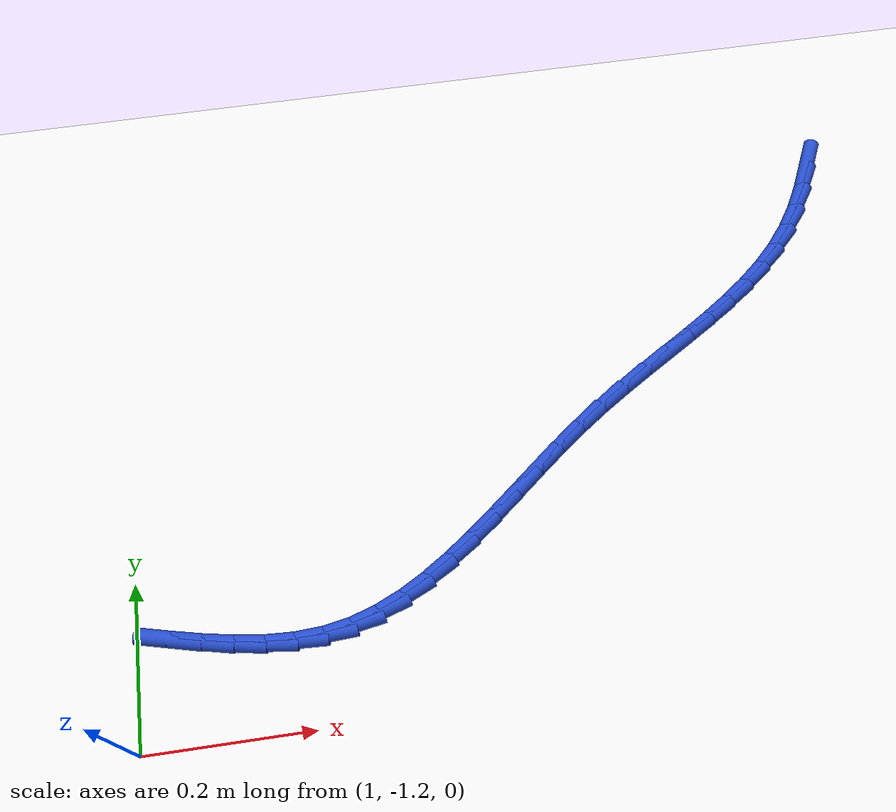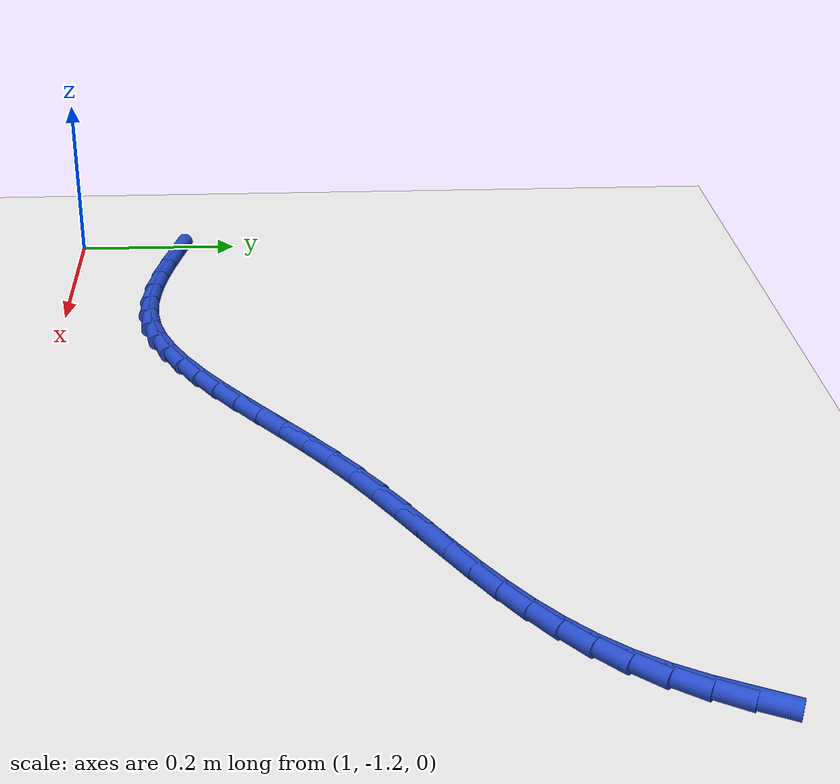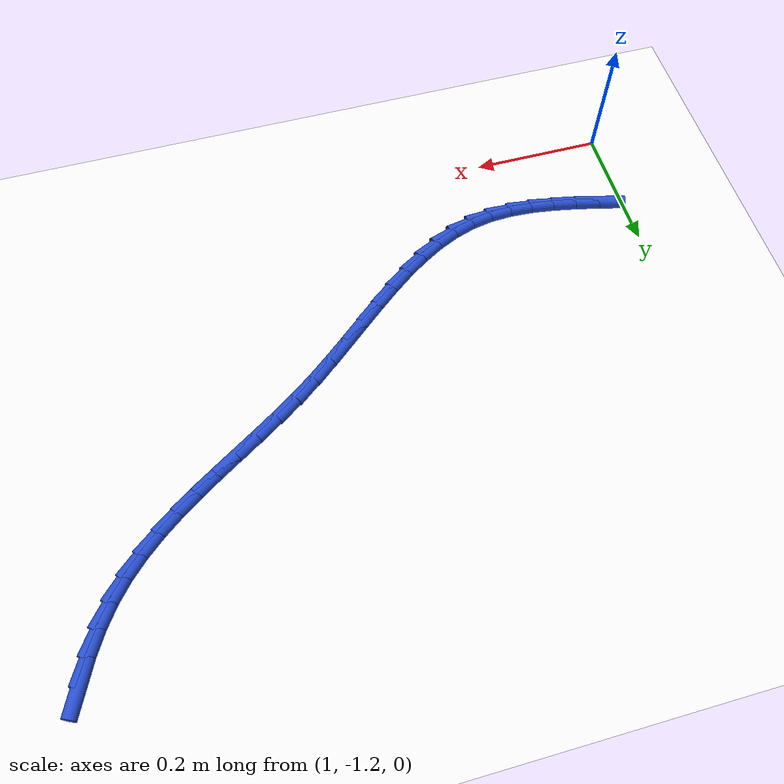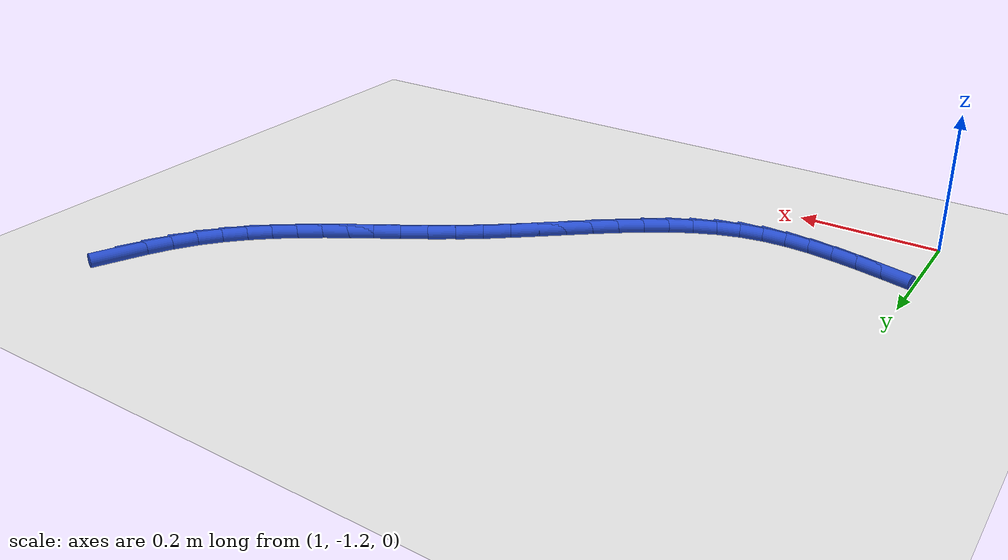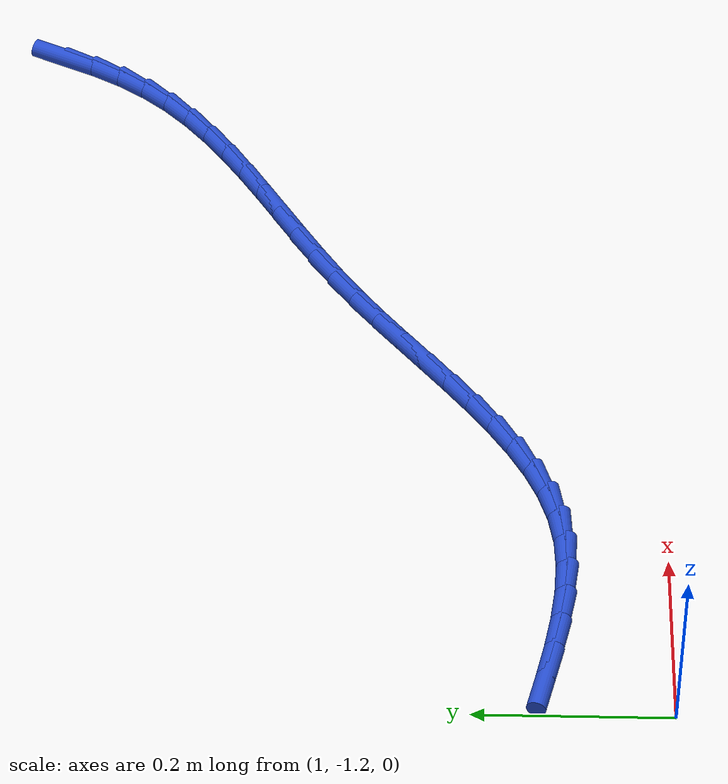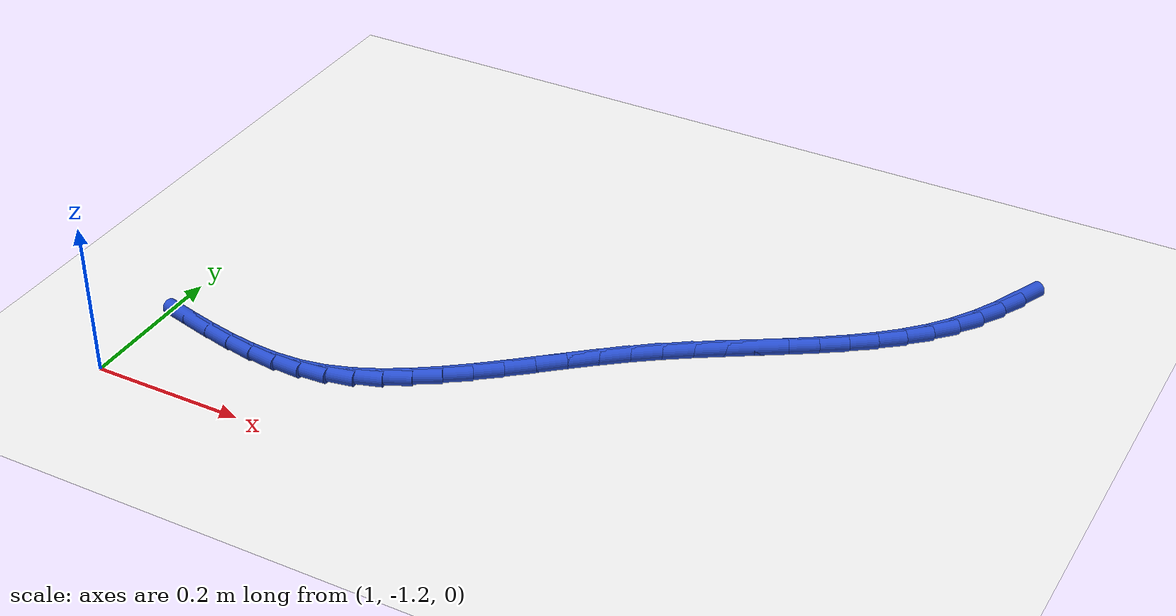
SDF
<sdf version="1.6">
 <world name="default">
  <model name="ground_plane">
   <static>1</static>
   <link name="link">
    <collision name="collision">
     <geometry><plane><normal>0 0 1</normal><size>100 100</size></plane></geometry>
     <surface><friction><ode><mu>100</mu><mu2>50</mu2></ode></friction></surface>
    </collision>
    <visual name="visual">
     <cast_shadows>0</cast_shadows>
     <geometry><plane><normal>0 0 1</normal><size>100 100</size></plane></geometry>
     <material>
      <script><uri>file://media/materials/scripts/gazebo.material</uri><name>Gazebo/WhiteGlow</name></script>
     </material>
    </visual>
   </link>
  </model>
  <model name="line">
   <link name="link_105">
    <pose>1.9261676094999935 -0.5460503893547127 0.01 0 1.57 1.1432242017782954</pose>
    <collision name="collision">
     <geometry><cylinder><radius>0.01</radius><length>0.08</length></cylinder></geometry>
    </collision>
    <visual name="visual">
     <material>
      <script><name>Gazebo/Blue</name><uri>file://media/materials/scripts/gazebo.material</uri></script>
     </material>
     <geometry><cylinder><radius>0.01</radius><length>0.08</length></cylinder></geometry>
    </visual>
   </link>
   <link name="link_106">
    <pose>1.9112290203674698 -0.5788330453610755 0.01 0 1.57 1.0710125754454067</pose>
    <collision name="collision">
     <geometry><cylinder><radius>0.01</radius><length>0.08</length></cylinder></geometry>
    </collision>
    <visual name="visual">
     <material>
      <script><name>Gazebo/Blue</name><uri>file://media/materials/scripts/gazebo.material</uri></script>
     </material>
     <geometry><cylinder><radius>0.01</radius><length>0.08</length></cylinder></geometry>
    </visual>
   </link>
   <link name="link_107">
    <pose>1.8942709921174206 -0.6098904687942246 0.01 0 1.57 0.9840373216354331</pose>
    <collision name="collision">
     <geometry><cylinder><radius>0.01</radius><length>0.08</length></cylinder></geometry>
    </collision>
    <visual name="visual">
     <material>
      <script><name>Gazebo/Blue</name><uri>file://media/materials/scripts/gazebo.material</uri></script>
     </material>
     <geometry><cylinder><radius>0.01</radius><length>0.08</length></cylinder></geometry>
    </visual>
   </link>
   <link name="link_108">
    <pose>1.8749660376786939 -0.6389260710450702 0.01 0 1.57 0.8845829806071636</pose>
    <collision name="collision">
     <geometry><cylinder><radius>0.01</radius><length>0.08</length></cylinder></geometry>
    </collision>
    <visual name="visual">
     <material>
      <script><name>Gazebo/Blue</name><uri>file://media/materials/scripts/gazebo.material</uri></script>
     </material>
     <geometry><cylinder><radius>0.01</radius><length>0.08</length></cylinder></geometry>
    </visual>
   </link>
   <link name="link_109">
    <pose>1.8530403977919414 -0.665697635472947 0.01 0 1.57 0.7911426953428679</pose>
    <collision name="collision">
     <geometry><cylinder><radius>0.01</radius><length>0.08</length></cylinder></geometry>
    </collision>
    <visual name="visual">
     <material>
      <script><name>Gazebo/Blue</name><uri>file://media/materials/scripts/gazebo.material</uri></script>
     </material>
     <geometry><cylinder><radius>0.01</radius><length>0.08</length></cylinder></geometry>
    </visual>
   </link>
   <link name="link_110">
    <pose>1.8286362095498403 -0.6903838280780594 0.01 0 1.57 0.7134195390564568</pose>
    <collision name="collision">
     <geometry><cylinder><radius>0.01</radius><length>0.08</length></cylinder></geometry>
    </collision>
    <visual name="visual">
     <material>
      <script><name>Gazebo/Blue</name><uri>file://media/materials/scripts/gazebo.material</uri></script>
     </material>
     <geometry><cylinder><radius>0.01</radius><length>0.08</length></cylinder></geometry>
    </visual>
   </link>
   <link name="link_111">
    <pose>1.802089641355401 -0.713359672462469 0.01 0 1.57 0.6519762931283316</pose>
    <collision name="collision">
     <geometry><cylinder><radius>0.01</radius><length>0.08</length></cylinder></geometry>
    </collision>
    <visual name="visual">
     <material>
      <script><name>Gazebo/Blue</name><uri>file://media/materials/scripts/gazebo.material</uri></script>
     </material>
     <geometry><cylinder><radius>0.01</radius><length>0.08</length></cylinder></geometry>
    </visual>
   </link>
   <link name="link_112">
    <pose>1.773737952674385 -0.7350012963720214 0.01 0 1.57 0.6064333924808711</pose>
    <collision name="collision">
     <geometry><cylinder><radius>0.01</radius><length>0.08</length></cylinder></geometry>
    </collision>
    <visual name="visual">
     <material>
      <script><name>Gazebo/Blue</name><uri>file://media/materials/scripts/gazebo.material</uri></script>
     </material>
     <geometry><cylinder><radius>0.01</radius><length>0.08</length></cylinder></geometry>
    </visual>
   </link>
   <link name="link_113">
    <pose>1.7439184029725527 -0.7556848275525612 0.01 0 1.57 0.5760109881021651</pose>
    <collision name="collision">
     <geometry><cylinder><radius>0.01</radius><length>0.08</length></cylinder></geometry>
    </collision>
    <visual name="visual">
     <material>
      <script><name>Gazebo/Blue</name><uri>file://media/materials/scripts/gazebo.material</uri></script>
     </material>
     <geometry><cylinder><radius>0.01</radius><length>0.08</length></cylinder></geometry>
    </visual>
   </link>
   <link name="link_114">
    <pose>1.712968251715665 -0.7757863937499334 0.01 0 1.57 0.5598679372290061</pose>
    <collision name="collision">
     <geometry><cylinder><radius>0.01</radius><length>0.08</length></cylinder></geometry>
    </collision>
    <visual name="visual">
     <material>
      <script><name>Gazebo/Blue</name><uri>file://media/materials/scripts/gazebo.material</uri></script>
     </material>
     <geometry><cylinder><radius>0.01</radius><length>0.08</length></cylinder></geometry>
    </visual>
   </link>
   <link name="link_115">
    <pose>1.681224758369483 -0.7956821227099842 0.01 0 1.57 0.5572869689228006</pose>
    <collision name="collision">
     <geometry><cylinder><radius>0.01</radius><length>0.08</length></cylinder></geometry>
    </collision>
    <visual name="visual">
     <material>
      <script><name>Gazebo/Blue</name><uri>file://media/materials/scripts/gazebo.material</uri></script>
     </material>
     <geometry><cylinder><radius>0.01</radius><length>0.08</length></cylinder></geometry>
    </visual>
   </link>
   <link name="link_116">
    <pose>1.649025182399768 -0.8157481421785567 0.01 0 1.57 0.5677456873198047</pose>
    <collision name="collision">
     <geometry><cylinder><radius>0.01</radius><length>0.08</length></cylinder></geometry>
    </collision>
    <visual name="visual">
     <material>
      <script><name>Gazebo/Blue</name><uri>file://media/materials/scripts/gazebo.material</uri></script>
     </material>
     <geometry><cylinder><radius>0.01</radius><length>0.08</length></cylinder></geometry>
    </visual>
   </link>
   <link name="link_117">
    <pose>1.6167067832722806 -0.8363605799014973 0.01 0 1.57 0.5909087154009603</pose>
    <collision name="collision">
     <geometry><cylinder><radius>0.01</radius><length>0.08</length></cylinder></geometry>
    </collision>
    <visual name="visual">
     <material>
      <script><name>Gazebo/Blue</name><uri>file://media/materials/scripts/gazebo.material</uri></script>
     </material>
     <geometry><cylinder><radius>0.01</radius><length>0.08</length></cylinder></geometry>
    </visual>
   </link>
   <link name="link_118">
    <pose>1.5846068204527821 -0.8578955636246508 0.01 0 1.57 0.6263878813326951</pose>
    <collision name="collision">
     <geometry><cylinder><radius>0.01</radius><length>0.08</length></cylinder></geometry>
    </collision>
    <visual name="visual">
     <material>
      <script><name>Gazebo/Blue</name><uri>file://media/materials/scripts/gazebo.material</uri></script>
     </material>
     <geometry><cylinder><radius>0.01</radius><length>0.08</length></cylinder></geometry>
    </visual>
   </link>
   <link name="link_119">
    <pose>1.5530593591513897 -0.8807232083966178 0.01 0 1.57 0.6639153889632367</pose>
    <collision name="collision">
     <geometry><cylinder><radius>0.01</radius><length>0.08</length></cylinder></geometry>
    </collision>
    <visual name="visual">
     <material>
      <script><name>Gazebo/Blue</name><uri>file://media/materials/scripts/gazebo.material</uri></script>
     </material>
     <geometry><cylinder><radius>0.01</radius><length>0.08</length></cylinder></geometry>
    </visual>
   </link>
   <link name="link_120">
    <pose>1.5222103028594485 -0.9048594436357743 0.01 0 1.57 0.6882784989565435</pose>
    <collision name="collision">
     <geometry><cylinder><radius>0.01</radius><length>0.08</length></cylinder></geometry>
    </collision>
    <visual name="visual">
     <material>
      <script><name>Gazebo/Blue</name><uri>file://media/materials/scripts/gazebo.material</uri></script>
     </material>
     <geometry><cylinder><radius>0.01</radius><length>0.08</length></cylinder></geometry>
    </visual>
   </link>
   <link name="link_121">
    <pose>1.4919158956932006 -0.9297749593303367 0.01 0 1.57 0.6985839850141007</pose>
    <collision name="collision">
     <geometry><cylinder><radius>0.01</radius><length>0.08</length></cylinder></geometry>
    </collision>
    <visual name="visual">
     <material>
      <script><name>Gazebo/Blue</name><uri>file://media/materials/scripts/gazebo.material</uri></script>
     </material>
     <geometry><cylinder><radius>0.01</radius><length>0.08</length></cylinder></geometry>
    </visual>
   </link>
   <link name="link_122">
    <pose>1.4620076961248196 -0.9548939785226519 0.01 0 1.57 0.694832046061837</pose>
    <collision name="collision">
     <geometry><cylinder><radius>0.01</radius><length>0.08</length></cylinder></geometry>
    </collision>
    <visual name="visual">
     <material>
      <script><name>Gazebo/Blue</name><uri>file://media/materials/scripts/gazebo.material</uri></script>
     </material>
     <geometry><cylinder><radius>0.01</radius><length>0.08</length></cylinder></geometry>
    </visual>
   </link>
   <link name="link_123">
    <pose>1.4323172626264813 -0.9796407242550674 0.01 0 1.57 0.6765036362694237</pose>
    <collision name="collision">
     <geometry><cylinder><radius>0.01</radius><length>0.08</length></cylinder></geometry>
    </collision>
    <visual name="visual">
     <material>
      <script><name>Gazebo/Blue</name><uri>file://media/materials/scripts/gazebo.material</uri></script>
     </material>
     <geometry><cylinder><radius>0.01</radius><length>0.08</length></cylinder></geometry>
    </visual>
   </link>
   <link name="link_124">
    <pose>1.4026761536703605 -1.00343941956993 0.01 0 1.57 0.6425261779871518</pose>
    <collision name="collision">
     <geometry><cylinder><radius>0.01</radius><length>0.08</length></cylinder></geometry>
    </collision>
    <visual name="visual">
     <material>
      <script><name>Gazebo/Blue</name><uri>file://media/materials/scripts/gazebo.material</uri></script>
     </material>
     <geometry><cylinder><radius>0.01</radius><length>0.08</length></cylinder></geometry>
    </visual>
   </link>
   <link name="link_125">
    <pose>1.3729159277286325 -1.0257142875095875 0.01 0 1.57 0.5912994658174964</pose>
    <collision name="collision">
     <geometry><cylinder><radius>0.01</radius><length>0.08</length></cylinder></geometry>
    </collision>
    <visual name="visual">
     <material>
      <script><name>Gazebo/Blue</name><uri>file://media/materials/scripts/gazebo.material</uri></script>
     </material>
     <geometry><cylinder><radius>0.01</radius><length>0.08</length></cylinder></geometry>
    </visual>
   </link>
   <link name="link_126">
    <pose>1.3428681432734715 -1.0458895511163868 0.01 0 1.57 0.520853321778429</pose>
    <collision name="collision">
     <geometry><cylinder><radius>0.01</radius><length>0.08</length></cylinder></geometry>
    </collision>
    <visual name="visual">
     <material>
      <script><name>Gazebo/Blue</name><uri>file://media/materials/scripts/gazebo.material</uri></script>
     </material>
     <geometry><cylinder><radius>0.01</radius><length>0.08</length></cylinder></geometry>
    </visual>
   </link>
   <link name="link_127">
    <pose>1.3123643587770546 -1.0633894334326752 0.01 0 1.57 0.4292742258600225</pose>
    <collision name="collision">
     <geometry><cylinder><radius>0.01</radius><length>0.08</length></cylinder></geometry>
    </collision>
    <visual name="visual">
     <material>
      <script><name>Gazebo/Blue</name><uri>file://media/materials/scripts/gazebo.material</uri></script>
     </material>
     <geometry><cylinder><radius>0.01</radius><length>0.08</length></cylinder></geometry>
    </visual>
   </link>
   <link name="link_128">
    <pose>1.2812361327115553 -1.0776381575007994 0.01 0 1.57 0.31557516690041293</pose>
    <collision name="collision">
     <geometry><cylinder><radius>0.01</radius><length>0.08</length></cylinder></geometry>
    </collision>
    <visual name="visual">
     <material>
      <script><name>Gazebo/Blue</name><uri>file://media/materials/scripts/gazebo.material</uri></script>
     </material>
     <geometry><cylinder><radius>0.01</radius><length>0.08</length></cylinder></geometry>
    </visual>
   </link>
   <link name="link_129">
    <pose>1.2493150235491497 -1.088059946363107 0.01 0 1.57 0.18192829583992962</pose>
    <collision name="collision">
     <geometry><cylinder><radius>0.01</radius><length>0.08</length></cylinder></geometry>
    </collision>
    <visual name="visual">
     <material>
      <script><name>Gazebo/Blue</name><uri>file://media/materials/scripts/gazebo.material</uri></script>
     </material>
     <geometry><cylinder><radius>0.01</radius><length>0.08</length></cylinder></geometry>
    </visual>
   </link>
   <link name="link_130">
    <pose>1.216438719816803 -1.0941079493811354 0.01 0 1.57 0.051643698198896415</pose>
    <collision name="collision">
     <geometry><cylinder><radius>0.01</radius><length>0.08</length></cylinder></geometry>
    </collision>
    <visual name="visual">
     <material>
      <script><name>Gazebo/Blue</name><uri>file://media/materials/scripts/gazebo.material</uri></script>
     </material>
     <geometry><cylinder><radius>0.01</radius><length>0.08</length></cylinder></geometry>
    </visual>
   </link>
   <link name="link_131">
    <pose>1.1825769228782965 -1.095858254142131 0.01 0 1.57 -0.05379016856375596</pose>
    <collision name="collision">
     <geometry><cylinder><radius>0.01</radius><length>0.08</length></cylinder></geometry>
    </collision>
    <visual name="visual">
     <material>
      <script><name>Gazebo/Blue</name><uri>file://media/materials/scripts/gazebo.material</uri></script>
     </material>
     <geometry><cylinder><radius>0.01</radius><length>0.08</length></cylinder></geometry>
    </visual>
   </link>
   <link name="link_132">
    <pose>1.147826543571544 -1.0939872204948842 0.01 0 1.57 -0.1340268315356007</pose>
    <collision name="collision">
     <geometry><cylinder><radius>0.01</radius><length>0.08</length></cylinder></geometry>
    </collision>
    <visual name="visual">
     <material>
      <script><name>Gazebo/Blue</name><uri>file://media/materials/scripts/gazebo.material</uri></script>
     </material>
     <geometry><cylinder><radius>0.01</radius><length>0.08</length></cylinder></geometry>
    </visual>
   </link>
   <link name="link_133">
    <pose>1.1122896617029852 -1.0891955994622666 0.01 0 1.57 -0.19120793871086017</pose>
    <collision name="collision">
     <geometry><cylinder><radius>0.01</radius><length>0.08</length></cylinder></geometry>
    </collision>
    <visual name="visual">
     <material>
      <script><name>Gazebo/Blue</name><uri>file://media/materials/scripts/gazebo.material</uri></script>
     </material>
     <geometry><cylinder><radius>0.01</radius><length>0.08</length></cylinder></geometry>
    </visual>
   </link>
   <link name="link_134">
    <pose>1.0760683570790608 -1.0821841420671514 0.01 0 1.57 -0.22776328262617018</pose>
    <collision name="collision">
     <geometry><cylinder><radius>0.01</radius><length>0.08</length></cylinder></geometry>
    </collision>
    <visual name="visual">
     <material>
      <script><name>Gazebo/Blue</name><uri>file://media/materials/scripts/gazebo.material</uri></script>
     </material>
     <geometry><cylinder><radius>0.01</radius><length>0.08</length></cylinder></geometry>
    </visual>
   </link>
   <link name="link_135">
    <pose>1.0392647095062113 -1.0736535993324101 0.01 0 1.57 -0.24568281689698895</pose>
    <collision name="collision">
     <geometry><cylinder><radius>0.01</radius><length>0.08</length></cylinder></geometry>
    </collision>
    <visual name="visual">
     <material>
      <script><name>Gazebo/Blue</name><uri>file://media/materials/scripts/gazebo.material</uri></script>
     </material>
     <geometry><cylinder><radius>0.01</radius><length>0.08</length></cylinder></geometry>
    </visual>
   </link>
  </model>
 </world>
</sdf>
